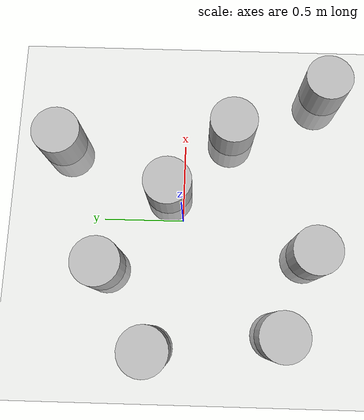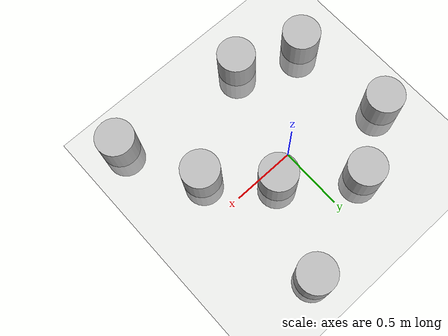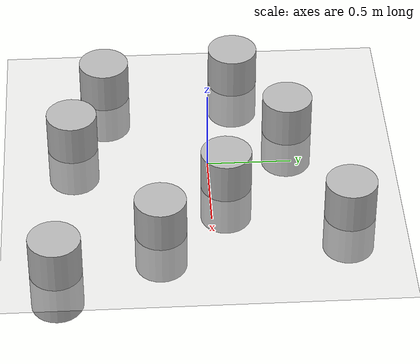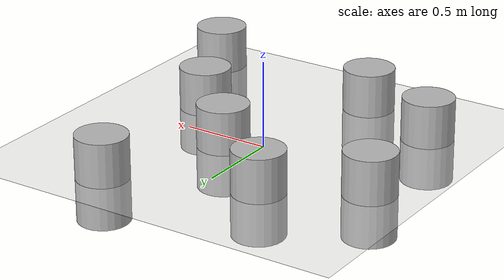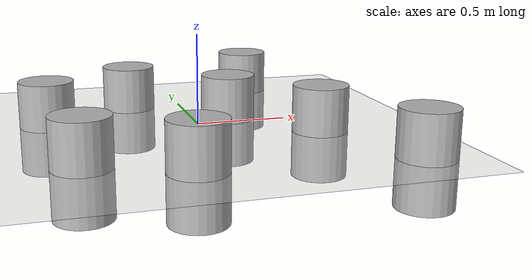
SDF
<?xml version="1.0"?>
<sdf version="1.6">
  <world name="default">
    <include>
      <uri>model://ground_plane</uri>
    </include>
    <include>
      <uri>model://sun</uri>
    </include>
    <scene>
      <shadows>false</shadows>
    </scene>

    <physics type="ode">
      <real_time_update_rate>1000.0</real_time_update_rate>
      <max_step_size>0.001</max_step_size>
      <real_time_factor>1</real_time_factor>
    </physics>

    <!-- Layout 1: Scattered obstacles (different from original) -->
    <model name="obstacle_1">
      <pose>0.5 0.8 0 0 0 0</pose>
      <static>true</static>
      <link name="link">
        <collision name="collision">
          <geometry>
            <cylinder>
              <radius>0.15</radius>
              <length>0.5</length>
            </cylinder>
          </geometry>
        </collision>
        <visual name="visual">
          <geometry>
            <cylinder>
              <radius>0.15</radius>
              <length>0.5</length>
            </cylinder>
          </geometry>
        </visual>
      </link>
    </model>

    <model name="obstacle_2">
      <pose>-0.7 -0.6 0 0 0 0</pose>
      <static>true</static>
      <link name="link">
        <collision name="collision">
          <geometry>
            <cylinder>
              <radius>0.15</radius>
              <length>0.5</length>
            </cylinder>
          </geometry>
        </collision>
        <visual name="visual">
          <geometry>
            <cylinder>
              <radius>0.15</radius>
              <length>0.5</length>
            </cylinder>
          </geometry>
        </visual>
      </link>
    </model>

    <model name="obstacle_3">
      <pose>0.9 -0.9 0 0 0 0</pose>
      <static>true</static>
      <link name="link">
        <collision name="collision">
          <geometry>
            <cylinder>
              <radius>0.15</radius>
              <length>0.5</length>
            </cylinder>
          </geometry>
        </collision>
        <visual name="visual">
          <geometry>
            <cylinder>
              <radius>0.15</radius>
              <length>0.5</length>
            </cylinder>
          </geometry>
        </visual>
      </link>
    </model>

    <model name="obstacle_4">
      <pose>-0.3 0.5 0 0 0 0</pose>
      <static>true</static>
      <link name="link">
        <collision name="collision">
          <geometry>
            <cylinder>
              <radius>0.15</radius>
              <length>0.5</length>
            </cylinder>
          </geometry>
        </collision>
        <visual name="visual">
          <geometry>
            <cylinder>
              <radius>0.15</radius>
              <length>0.5</length>
            </cylinder>
          </geometry>
        </visual>
      </link>
    </model>

    <model name="obstacle_5">
      <pose>0.6 -0.3 0 0 0 0</pose>
      <static>true</static>
      <link name="link">
        <collision name="collision">
          <geometry>
            <cylinder>
              <radius>0.15</radius>
              <length>0.5</length>
            </cylinder>
          </geometry>
        </collision>
        <visual name="visual">
          <geometry>
            <cylinder>
              <radius>0.15</radius>
              <length>0.5</length>
            </cylinder>
          </geometry>
        </visual>
      </link>
    </model>

    <model name="obstacle_6">
      <pose>-0.8 0.2 0 0 0 0</pose>
      <static>true</static>
      <link name="link">
        <collision name="collision">
          <geometry>
            <cylinder>
              <radius>0.15</radius>
              <length>0.5</length>
            </cylinder>
          </geometry>
        </collision>
        <visual name="visual">
          <geometry>
            <cylinder>
              <radius>0.15</radius>
              <length>0.5</length>
            </cylinder>
          </geometry>
        </visual>
      </link>
    </model>

    <model name="obstacle_7">
      <pose>0.2 0.1 0 0 0 0</pose>
      <static>true</static>
      <link name="link">
        <collision name="collision">
          <geometry>
            <cylinder>
              <radius>0.15</radius>
              <length>0.5</length>
            </cylinder>
          </geometry>
        </collision>
        <visual name="visual">
          <geometry>
            <cylinder>
              <radius>0.15</radius>
              <length>0.5</length>
            </cylinder>
          </geometry>
        </visual>
      </link>
    </model>

    <model name="obstacle_8">
      <pose>-0.2 -0.8 0 0 0 0</pose>
      <static>true</static>
      <link name="link">
        <collision name="collision">
          <geometry>
            <cylinder>
              <radius>0.15</radius>
              <length>0.5</length>
            </cylinder>
          </geometry>
        </collision>
        <visual name="visual">
          <geometry>
            <cylinder>
              <radius>0.15</radius>
              <length>0.5</length>
            </cylinder>
          </geometry>
        </visual>
      </link>
    </model>

  </world>
</sdf>
